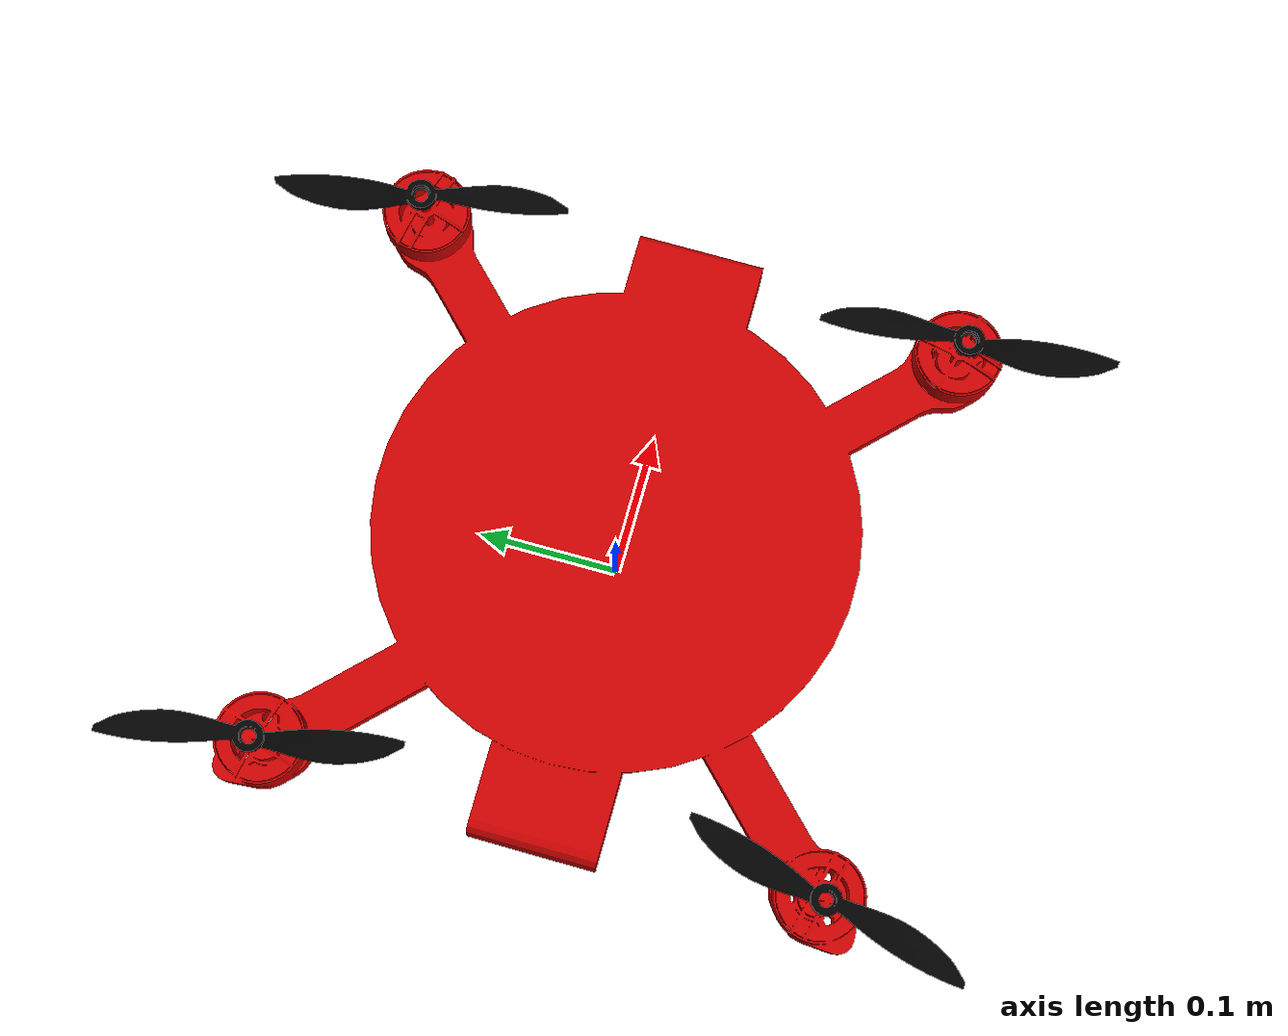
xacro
<?xml version="1.0"?>
<robot xmlns:xacro="http://www.ros.org/wiki/xacro" name="drone">

    <xacro:property name="robot_name" value="drone" />

    <!-- MATERIAL COLOR  -->
    <material name="red">
        <color rgba="0.8 0 0 1"/>
    </material>
    <material name="black">
        <color rgba="0 0 0 1"/>
    </material>

    <link name="drone/base_footprint"/>

    <link name="drone/chassis_link">
        <pose>0 0 0.2 0 0 0</pose>
        <inertial>
            <mass value="1.5"/>
            <inertia ixx="0.0347563" ixy="0" ixz="0" iyy="0.07" iyz="0" izz="0.0977"/>
        </inertial>

        <collision>
            <origin xyz="0 0 0" rpy="0 0 0"/>
            <geometry>
                <mesh filename="file://$(find drone_description)/meshes/base_link.dae" scale="5 5 5"/>
            </geometry>
        </collision>

        <visual>
            <origin xyz="0 0 0" rpy="0 0 0"/>
            <geometry>
                <mesh filename="file://$(find drone_description)/meshes/base_link.dae" scale="5 5 5"/>
            </geometry>
            <material name="red"/>

        </visual>
    </link>

    <joint name="drone/base_joint" type="fixed">
        <parent link="drone/base_footprint"/>
        <child link="drone/chassis_link"/>
        <origin xyz="0.0 0.0 0.1460" rpy="0.0 0.0 0.0"/>
    </joint>

    <link name="drone/m1_link">
        <pose>0.19 -0.19 -0.025 0 0 0</pose>
        <inertial>
            <mass value="0.005"/>
            <inertia ixx="9.75e-07" ixy="0" ixz="0" iyy="4.17041e-05" iyz="0" izz="4.26041e-05"/>
        </inertial>

        <collision>
            <origin xyz="0 0 0" rpy="0 0 0"/>
            <geometry>
                <mesh filename="file://$(find drone_description)/meshes/m1_link.dae" scale="5 5 5"/>
            </geometry>
        </collision>

        <visual>
            <origin xyz="0 0 0" rpy="0 0 0"/>
            <geometry>
                <mesh filename="file://$(find drone_description)/meshes/m1_link.dae" scale="5 5 5"/>
            </geometry>
            <material name="black"/>
        </visual>
    </link>

    <joint name="drone/m1_joint" type="revolute">
        <parent link="drone/chassis_link"/>
        <child link="drone/m1_link"/>
        <origin xyz="0.19 -0.19 -0.025" rpy="0 0 0"/>
        <axis xyz="0 0 1"/>
        <limit lower="-1e+16" upper="1e+16" effort="10.0" velocity="1000.0"/>

    </joint>

    <link name="drone/m2_link">
        <pose>-0.19 0.19 -0.025 0 0 0</pose>
        <inertial>
            <mass value="0.005"/>
            <inertia ixx="9.75e-07" ixy="0" ixz="0" iyy="4.17041e-05" iyz="0" izz="4.26041e-05"/>
        </inertial>

        <collision>
            <origin xyz="0 0 0" rpy="0 0 0"/>
            <geometry>
                <mesh filename="file://$(find drone_description)/meshes/m2_link.dae" scale="5 5 5"/>
            </geometry>
        </collision>

        <visual>
            <origin xyz="0 0 0" rpy="0 0 0"/>
            <geometry>
                <mesh filename="file://$(find drone_description)/meshes/m2_link.dae" scale="5 5 5"/>
            </geometry>
            <material name="black"/>

        </visual>
    </link>

    <joint name="drone/m2_joint" type="revolute">
        <parent link="drone/chassis_link"/>
        <child link="drone/m2_link"/>
        <origin xyz="-0.19 0.19 -0.025" rpy="0 0 0"/>
        <axis xyz="0 0 1"/>
        <limit lower="-1e+16" upper="1e+16" effort="10.0" velocity="1000.0"/>

    </joint>

    <link name="drone/m3_link">
        <pose>0.19 0.19 -0.025 0 0 0</pose>
        <inertial>
            <mass value="0.005"/>
            <inertia ixx="9.75e-07" ixy="0" ixz="0" iyy="4.17041e-05" iyz="0" izz="4.26041e-05"/>
        </inertial>

        <collision>
            <origin xyz="0 0 0" rpy="0 0 0"/>
            <geometry>
                <mesh filename="file://$(find drone_description)/meshes/m3_link.dae" scale="5 5 5"/>
            </geometry>
        </collision>

        <visual>
            <origin xyz="0 0 0" rpy="0 0 0"/>
            <geometry>
                <mesh filename="file://$(find drone_description)/meshes/m3_link.dae" scale="5 5 5"/>
            </geometry>
            <material name="black"/>

        </visual>
    </link>

    <joint name="drone/m3_joint" type="revolute">
        <parent link="drone/chassis_link"/>
        <child link="drone/m3_link"/>
        <origin xyz="0.19 0.19 -0.025" rpy="0 0 0"/>
        <axis xyz="0 0 1"/>
        <limit lower="-1e+16" upper="1e+16" effort="10.0" velocity="1000.0"/>

    </joint>

    <link name="drone/m4_link">
        <pose>-0.19 -0.19 -0.025 0 0 0</pose>
        <inertial>
            <mass value="0.005"/>
            <inertia ixx="9.75e-07" ixy="0" ixz="0" iyy="4.17041e-05" iyz="0" izz="4.26041e-05"/>
        </inertial>

        <collision>
            <origin xyz="0 0 0" rpy="0 0 0"/>
            <geometry>
                <mesh filename="file://$(find drone_description)/meshes/m4_link.dae" scale="5 5 5"/>
            </geometry>
        </collision>

        <visual>
            <origin xyz="0 0 0" rpy="0 0 0"/>
            <geometry>
                <mesh filename="file://$(find drone_description)/meshes/m4_link.dae" scale="5 5 5"/>
            </geometry>
            <material name="black"/>
        </visual>
    </link>

    <joint name="drone/m4_joint" type="revolute">
        <parent link="drone/chassis_link"/>
        <child link="drone/m4_link"/>
        <origin xyz="-0.19 -0.19 -0.025" rpy="0 0 0"/>
        <axis xyz="0 0 1"/>
        <limit lower="-1e+16" upper="1e+16" effort="10.0" velocity="1000.0"/>

    </joint>

    <gazebo>
        <plugin filename="ignition-gazebo-multicopter-motor-model-system" name="gz::sim::systems::MulticopterMotorModel">
            <jointName>drone/m1_joint</jointName>
            <linkName>drone/m1_link</linkName>
            <turningDirection>ccw</turningDirection>
            <timeConstantUp>0.0125</timeConstantUp>
            <timeConstantDown>0.025</timeConstantDown>
            <maxRotVelocity>800.0</maxRotVelocity>
            <motorConstant>8.54858e-06</motorConstant>
            <momentConstant>0.016</momentConstant>
            <commandSubTopic>gazebo/command/motor_speed</commandSubTopic>
            <motorNumber>0</motorNumber>
            <rotorDragCoefficient>8.06428e-05</rotorDragCoefficient>
            <rollingMomentCoefficient>1e-06</rollingMomentCoefficient>
            <motorSpeedPubTopic>motor_speed/0</motorSpeedPubTopic>
            <rotorVelocitySlowdownSim>10</rotorVelocitySlowdownSim>
            <motorType>velocity</motorType>
        </plugin>

        <plugin filename="ignition-gazebo-multicopter-motor-model-system" name="gz::sim::systems::MulticopterMotorModel">

            <robotNamespace>${robot_name}</robotNamespace>
            <jointName>drone/m2_joint</jointName>
            <linkName>drone/m2_link</linkName>
            <turningDirection>ccw</turningDirection>
            <timeConstantUp>0.0125</timeConstantUp>
            <timeConstantDown>0.025</timeConstantDown>
            <maxRotVelocity>800.0</maxRotVelocity>
            <motorConstant>8.54858e-06</motorConstant>
            <momentConstant>0.016</momentConstant>
            <commandSubTopic>gazebo/command/motor_speed</commandSubTopic>
            <motorNumber>1</motorNumber>
            <rotorDragCoefficient>8.06428e-05</rotorDragCoefficient>
            <rollingMomentCoefficient>1e-06</rollingMomentCoefficient>
            <motorSpeedPubTopic>motor_speed/0</motorSpeedPubTopic>
            <rotorVelocitySlowdownSim>10</rotorVelocitySlowdownSim>
            <motorType>velocity</motorType>
        </plugin>

        <plugin filename="ignition-gazebo-multicopter-motor-model-system" name="gz::sim::systems::MulticopterMotorModel">
            <robotNamespace>${robot_name}</robotNamespace>
            <jointName>drone/m3_joint</jointName>
            <linkName>drone/m3_link</linkName>
            <turningDirection>cw</turningDirection>
            <timeConstantUp>0.0125</timeConstantUp>
            <timeConstantDown>0.025</timeConstantDown>
            <maxRotVelocity>800.0</maxRotVelocity>
            <motorConstant>8.54858e-06</motorConstant>
            <momentConstant>0.016</momentConstant>
            <commandSubTopic>gazebo/command/motor_speed</commandSubTopic>
            <motorNumber>2</motorNumber>
            <rotorDragCoefficient>8.06428e-05</rotorDragCoefficient>
            <rollingMomentCoefficient>1e-06</rollingMomentCoefficient>
            <motorSpeedPubTopic>motor_speed/0</motorSpeedPubTopic>
            <rotorVelocitySlowdownSim>10</rotorVelocitySlowdownSim>
            <motorType>velocity</motorType>
        </plugin>

        <plugin filename="ignition-gazebo-multicopter-motor-model-system" name="gz::sim::systems::MulticopterMotorModel">
            <robotNamespace>${robot_name}</robotNamespace>
            <jointName>drone/m4_joint</jointName>
            <linkName>drone/m4_link</linkName>
            <turningDirection>cw</turningDirection>
            <timeConstantUp>0.0125</timeConstantUp>
            <timeConstantDown>0.025</timeConstantDown>
            <maxRotVelocity>800.0</maxRotVelocity>
            <motorConstant>8.54858e-06</motorConstant>
            <momentConstant>0.016</momentConstant>
            <commandSubTopic>gazebo/command/motor_speed</commandSubTopic>
            <motorNumber>3</motorNumber>
            <rotorDragCoefficient>8.06428e-05</rotorDragCoefficient>
            <rollingMomentCoefficient>1e-06</rollingMomentCoefficient>
            <motorSpeedPubTopic>motor_speed/0</motorSpeedPubTopic>
            <rotorVelocitySlowdownSim>10</rotorVelocitySlowdownSim>
            <motorType>velocity</motorType>
        </plugin>

        <plugin filename="ignition-gazebo-multicopter-control-system" name="ignition::gazebo::systems::MulticopterVelocityControl">
            <robotNamespace>${robot_name}</robotNamespace>
            <commandSubTopic>cmd_vel</commandSubTopic>
            <enableSubTopic>enable</enableSubTopic>
            <comLinkName>drone/base_footprint</comLinkName>
            <velocityGain>2.7 2.7 2.7</velocityGain>
            <attitudeGain>2 3 0.15</attitudeGain>
            <angularRateGain>0.4 0.52 0.18</angularRateGain>
            <maximumLinearAcceleration>2 2 2</maximumLinearAcceleration>

            <rotorConfiguration>
                <rotor>
                    <jointName>drone/m1_joint</jointName>
                    <forceConstant>8.54858e-06</forceConstant>
                    <momentConstant>0.016</momentConstant>
                    <direction>1</direction>
                </rotor>
                <rotor>
                    <jointName>drone/m2_joint</jointName>
                    <forceConstant>8.54858e-06</forceConstant>
                    <momentConstant>0.016</momentConstant>
                    <direction>1</direction>
                </rotor>
                <rotor>
                    <jointName>drone/m3_joint</jointName>
                    <forceConstant>8.54858e-06</forceConstant>
                    <momentConstant>0.016</momentConstant>
                    <direction>-1</direction>
                </rotor>
                <rotor>
                    <jointName>drone/m4_joint</jointName>
                    <forceConstant>8.54858e-06</forceConstant>
                    <momentConstant>0.016</momentConstant>
                    <direction>-1</direction>
                </rotor>
            </rotorConfiguration>
        </plugin>

        <plugin filename="ignition-gazebo-joint-state-publisher-system" name="ignition::gazebo::systems::JointStatePublisher">
            <joint_name>drone/m1_joint</joint_name>
            <joint_name>drone/m2_joint</joint_name>
            <joint_name>drone/m3_joint</joint_name>
            <joint_name>drone/m4_joint</joint_name>
        </plugin>

        <plugin filename="gz-sim-odometry-publisher-system" name="ignition::gazebo::systems::OdometryPublisher">
            <dimensions>3</dimensions>
            <odom_frame>drone/odom</odom_frame>
            <robot_base_frame>drone/base_footprint</robot_base_frame>
        </plugin>

    </gazebo>

    <!-- Color Tag -->
    <gazebo reference="drone/chassis_link">
        <visual>
            <material>
                <ambient>0.8 0 0 1</ambient>
                <diffuse>0.8 0 0 1</diffuse>
                <specular>0.8 0 0 1</specular>
            </material>
        </visual>
    </gazebo>

    <gazebo reference="drone/m1_link">
        <visual>
            <material>
                <ambient>0 0 0 1</ambient>
                <diffuse>0 0 0 1</diffuse>
                <specular>0 0 0 1</specular>
            </material>
        </visual>
    </gazebo>

    <gazebo reference="drone/m2_link">
        <visual>
            <material>
                <ambient>0 0 0 1</ambient>
                <diffuse>0 0 0 1</diffuse>
                <specular>0 0 0 1</specular>
            </material>
        </visual>
    </gazebo>

    <gazebo reference="drone/m3_link">
        <visual>
            <material>
                <ambient>0 0 0 1</ambient>
                <diffuse>0 0 0 1</diffuse>
                <specular>0 0 0 1</specular>
            </material>
        </visual>
    </gazebo>

    <gazebo reference="drone/m4_link">
        <visual>
            <material>
                <ambient>0 0 0 1</ambient>
                <diffuse>0 0 0 1</diffuse>
                <specular>0 0 0 1</specular>
            </material>
        </visual>
    </gazebo>

</robot>
